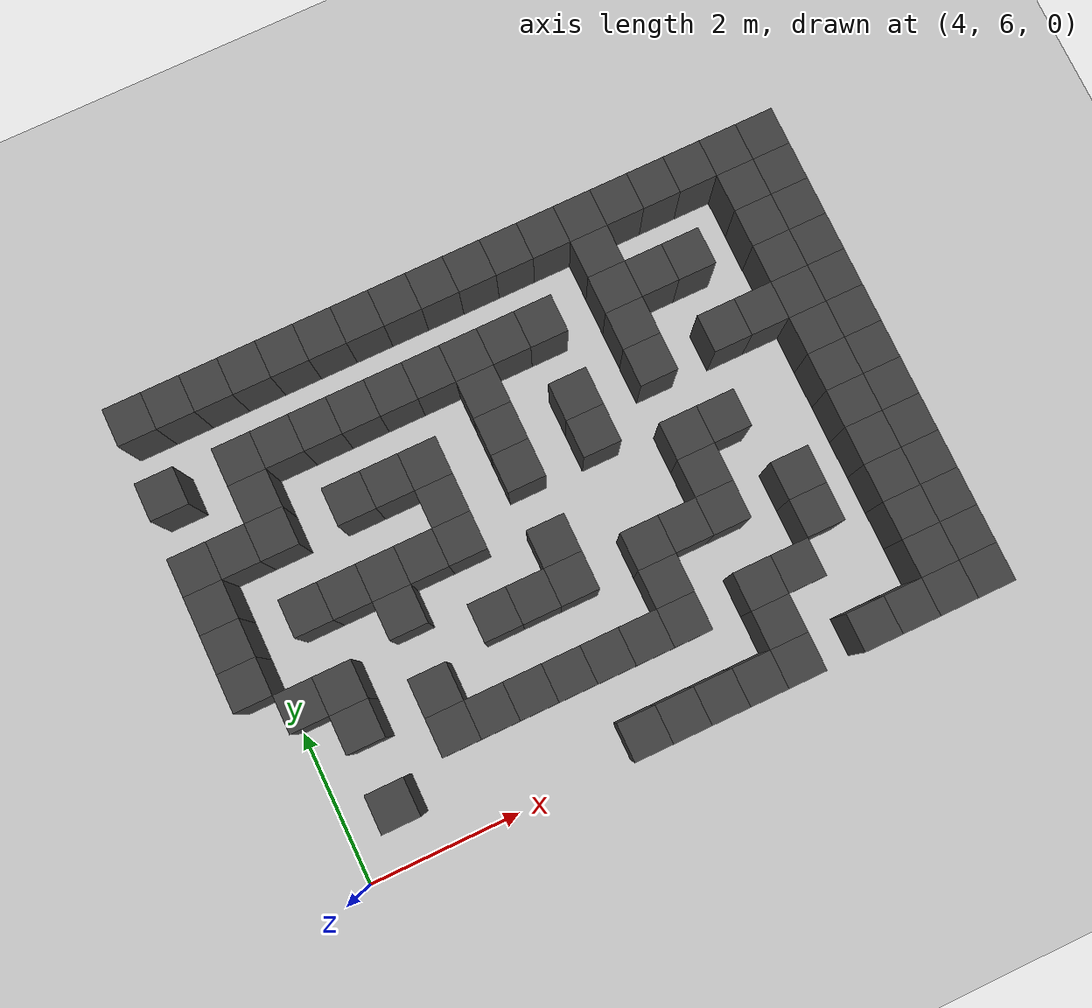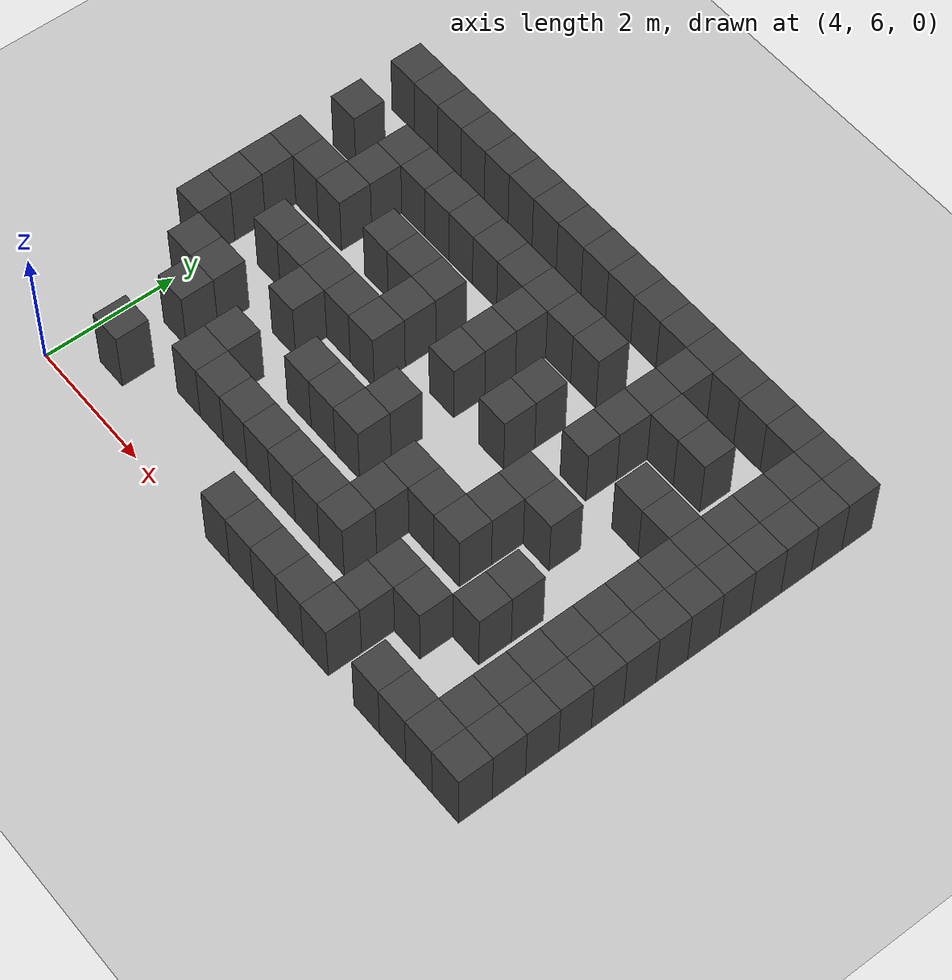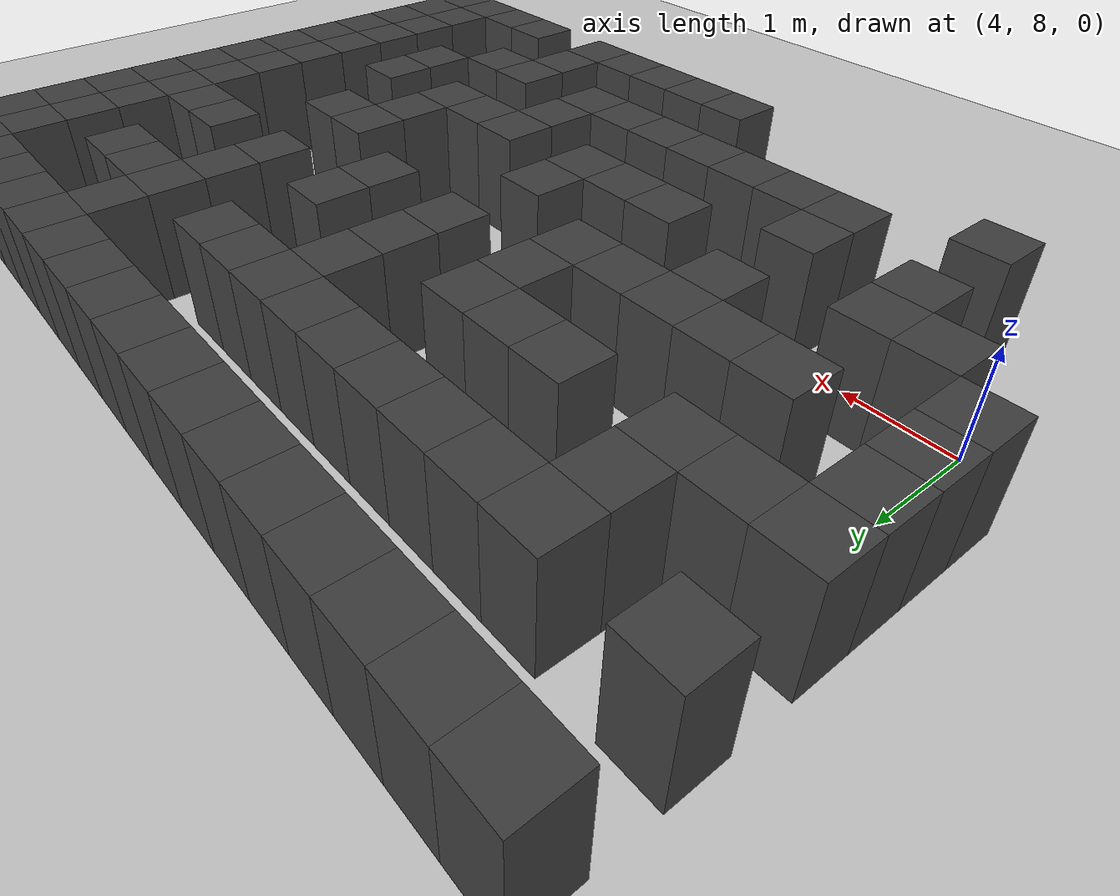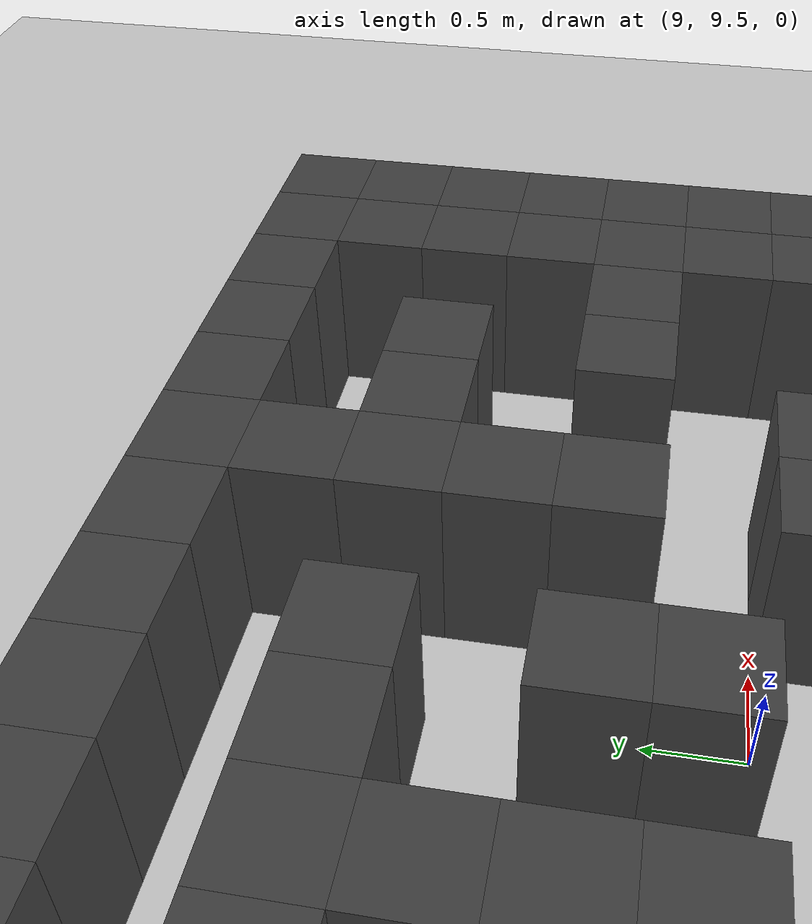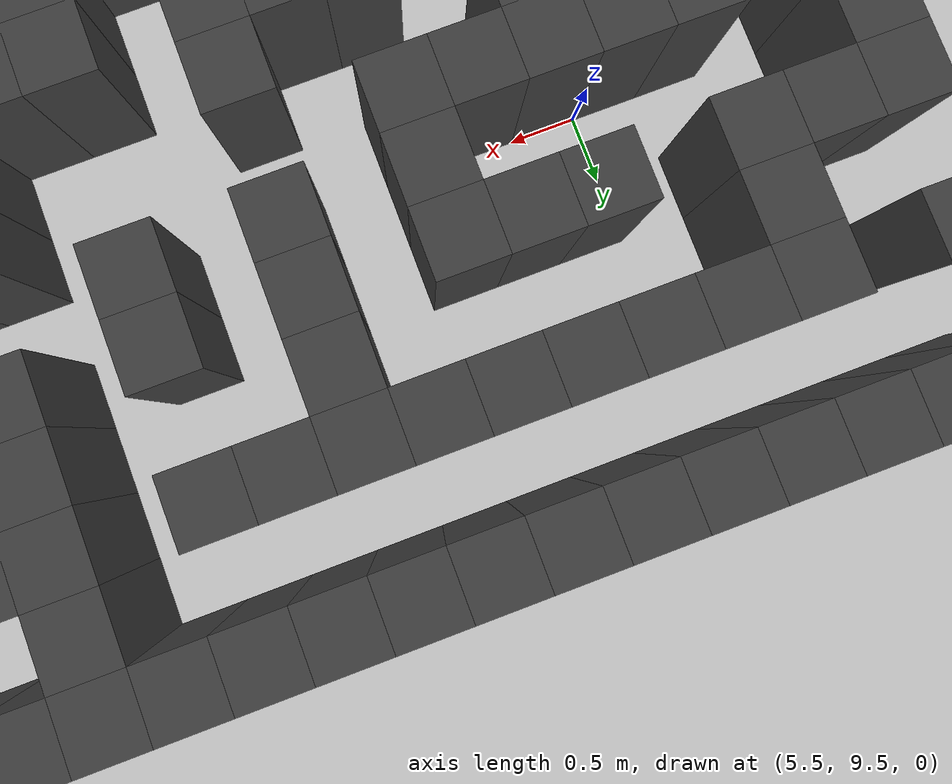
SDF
<sdf version="1.7">
 <world name="map_18228">
  <model name="ground_plane">
   <static>true</static>
   <link name="link">
    <collision name="collision">
     <geometry><plane><normal>0 0 1</normal><size>200 200</size></plane></geometry>
    </collision>
    <visual name="visual">
     <geometry><plane><normal>0 0 1</normal><size>200 200</size></plane></geometry>
     <material><ambient>0.8 0.8 0.8 1</ambient><diffuse>0.8 0.8 0.8 1</diffuse></material>
    </visual>
   </link>
  </model>
  <model name="maze_environment">
   <static>true</static>
   <link name="wall_32">
    <pose>3.750 12.250 0.500 0 0 0</pose>
    <collision name="col"><geometry><box><size>0.5 0.5 1.0</size></box></geometry></collision>
    <visual name="vis">
     <geometry><box><size>0.5 0.5 1.0</size></box></geometry>
     <material><ambient>0.15 0.15 0.15 1</ambient><diffuse>0.25 0.25 0.25 1</diffuse></material>
    </visual>
   </link>
   <link name="wall_33">
    <pose>4.250 12.250 0.500 0 0 0</pose>
    <collision name="col"><geometry><box><size>0.5 0.5 1.0</size></box></geometry></collision>
    <visual name="vis">
     <geometry><box><size>0.5 0.5 1.0</size></box></geometry>
     <material><ambient>0.15 0.15 0.15 1</ambient><diffuse>0.25 0.25 0.25 1</diffuse></material>
    </visual>
   </link>
   <link name="wall_34">
    <pose>4.750 12.250 0.500 0 0 0</pose>
    <collision name="col"><geometry><box><size>0.5 0.5 1.0</size></box></geometry></collision>
    <visual name="vis">
     <geometry><box><size>0.5 0.5 1.0</size></box></geometry>
     <material><ambient>0.15 0.15 0.15 1</ambient><diffuse>0.25 0.25 0.25 1</diffuse></material>
    </visual>
   </link>
   <link name="wall_35">
    <pose>5.250 12.250 0.500 0 0 0</pose>
    <collision name="col"><geometry><box><size>0.5 0.5 1.0</size></box></geometry></collision>
    <visual name="vis">
     <geometry><box><size>0.5 0.5 1.0</size></box></geometry>
     <material><ambient>0.15 0.15 0.15 1</ambient><diffuse>0.25 0.25 0.25 1</diffuse></material>
    </visual>
   </link>
   <link name="wall_36">
    <pose>5.750 12.250 0.500 0 0 0</pose>
    <collision name="col"><geometry><box><size>0.5 0.5 1.0</size></box></geometry></collision>
    <visual name="vis">
     <geometry><box><size>0.5 0.5 1.0</size></box></geometry>
     <material><ambient>0.15 0.15 0.15 1</ambient><diffuse>0.25 0.25 0.25 1</diffuse></material>
    </visual>
   </link>
   <link name="wall_37">
    <pose>6.250 12.250 0.500 0 0 0</pose>
    <collision name="col"><geometry><box><size>0.5 0.5 1.0</size></box></geometry></collision>
    <visual name="vis">
     <geometry><box><size>0.5 0.5 1.0</size></box></geometry>
     <material><ambient>0.15 0.15 0.15 1</ambient><diffuse>0.25 0.25 0.25 1</diffuse></material>
    </visual>
   </link>
   <link name="wall_38">
    <pose>6.750 12.250 0.500 0 0 0</pose>
    <collision name="col"><geometry><box><size>0.5 0.5 1.0</size></box></geometry></collision>
    <visual name="vis">
     <geometry><box><size>0.5 0.5 1.0</size></box></geometry>
     <material><ambient>0.15 0.15 0.15 1</ambient><diffuse>0.25 0.25 0.25 1</diffuse></material>
    </visual>
   </link>
   <link name="wall_39">
    <pose>7.250 12.250 0.500 0 0 0</pose>
    <collision name="col"><geometry><box><size>0.5 0.5 1.0</size></box></geometry></collision>
    <visual name="vis">
     <geometry><box><size>0.5 0.5 1.0</size></box></geometry>
     <material><ambient>0.15 0.15 0.15 1</ambient><diffuse>0.25 0.25 0.25 1</diffuse></material>
    </visual>
   </link>
   <link name="wall_40">
    <pose>7.750 12.250 0.500 0 0 0</pose>
    <collision name="col"><geometry><box><size>0.5 0.5 1.0</size></box></geometry></collision>
    <visual name="vis">
     <geometry><box><size>0.5 0.5 1.0</size></box></geometry>
     <material><ambient>0.15 0.15 0.15 1</ambient><diffuse>0.25 0.25 0.25 1</diffuse></material>
    </visual>
   </link>
   <link name="wall_41">
    <pose>8.250 12.250 0.500 0 0 0</pose>
    <collision name="col"><geometry><box><size>0.5 0.5 1.0</size></box></geometry></collision>
    <visual name="vis">
     <geometry><box><size>0.5 0.5 1.0</size></box></geometry>
     <material><ambient>0.15 0.15 0.15 1</ambient><diffuse>0.25 0.25 0.25 1</diffuse></material>
    </visual>
   </link>
   <link name="wall_42">
    <pose>8.750 12.250 0.500 0 0 0</pose>
    <collision name="col"><geometry><box><size>0.5 0.5 1.0</size></box></geometry></collision>
    <visual name="vis">
     <geometry><box><size>0.5 0.5 1.0</size></box></geometry>
     <material><ambient>0.15 0.15 0.15 1</ambient><diffuse>0.25 0.25 0.25 1</diffuse></material>
    </visual>
   </link>
   <link name="wall_43">
    <pose>9.250 12.250 0.500 0 0 0</pose>
    <collision name="col"><geometry><box><size>0.5 0.5 1.0</size></box></geometry></collision>
    <visual name="vis">
     <geometry><box><size>0.5 0.5 1.0</size></box></geometry>
     <material><ambient>0.15 0.15 0.15 1</ambient><diffuse>0.25 0.25 0.25 1</diffuse></material>
    </visual>
   </link>
   <link name="wall_44">
    <pose>9.750 12.250 0.500 0 0 0</pose>
    <collision name="col"><geometry><box><size>0.5 0.5 1.0</size></box></geometry></collision>
    <visual name="vis">
     <geometry><box><size>0.5 0.5 1.0</size></box></geometry>
     <material><ambient>0.15 0.15 0.15 1</ambient><diffuse>0.25 0.25 0.25 1</diffuse></material>
    </visual>
   </link>
   <link name="wall_45">
    <pose>10.250 12.250 0.500 0 0 0</pose>
    <collision name="col"><geometry><box><size>0.5 0.5 1.0</size></box></geometry></collision>
    <visual name="vis">
     <geometry><box><size>0.5 0.5 1.0</size></box></geometry>
     <material><ambient>0.15 0.15 0.15 1</ambient><diffuse>0.25 0.25 0.25 1</diffuse></material>
    </visual>
   </link>
   <link name="wall_46">
    <pose>10.750 12.250 0.500 0 0 0</pose>
    <collision name="col"><geometry><box><size>0.5 0.5 1.0</size></box></geometry></collision>
    <visual name="vis">
     <geometry><box><size>0.5 0.5 1.0</size></box></geometry>
     <material><ambient>0.15 0.15 0.15 1</ambient><diffuse>0.25 0.25 0.25 1</diffuse></material>
    </visual>
   </link>
   <link name="wall_47">
    <pose>11.250 12.250 0.500 0 0 0</pose>
    <collision name="col"><geometry><box><size>0.5 0.5 1.0</size></box></geometry></collision>
    <visual name="vis">
     <geometry><box><size>0.5 0.5 1.0</size></box></geometry>
     <material><ambient>0.15 0.15 0.15 1</ambient><diffuse>0.25 0.25 0.25 1</diffuse></material>
    </visual>
   </link>
   <link name="wall_48">
    <pose>11.750 12.250 0.500 0 0 0</pose>
    <collision name="col"><geometry><box><size>0.5 0.5 1.0</size></box></geometry></collision>
    <visual name="vis">
     <geometry><box><size>0.5 0.5 1.0</size></box></geometry>
     <material><ambient>0.15 0.15 0.15 1</ambient><diffuse>0.25 0.25 0.25 1</diffuse></material>
    </visual>
   </link>
   <link name="wall_49">
    <pose>12.250 12.250 0.500 0 0 0</pose>
    <collision name="col"><geometry><box><size>0.5 0.5 1.0</size></box></geometry></collision>
    <visual name="vis">
     <geometry><box><size>0.5 0.5 1.0</size></box></geometry>
     <material><ambient>0.15 0.15 0.15 1</ambient><diffuse>0.25 0.25 0.25 1</diffuse></material>
    </visual>
   </link>
   <link name="wall_54">
    <pose>9.750 11.750 0.500 0 0 0</pose>
    <collision name="col"><geometry><box><size>0.5 0.5 1.0</size></box></geometry></collision>
    <visual name="vis">
     <geometry><box><size>0.5 0.5 1.0</size></box></geometry>
     <material><ambient>0.15 0.15 0.15 1</ambient><diffuse>0.25 0.25 0.25 1</diffuse></material>
    </visual>
   </link>
   <link name="wall_55">
    <pose>11.750 11.750 0.500 0 0 0</pose>
    <collision name="col"><geometry><box><size>0.5 0.5 1.0</size></box></geometry></collision>
    <visual name="vis">
     <geometry><box><size>0.5 0.5 1.0</size></box></geometry>
     <material><ambient>0.15 0.15 0.15 1</ambient><diffuse>0.25 0.25 0.25 1</diffuse></material>
    </visual>
   </link>
   <link name="wall_56">
    <pose>12.250 11.750 0.500 0 0 0</pose>
    <collision name="col"><geometry><box><size>0.5 0.5 1.0</size></box></geometry></collision>
    <visual name="vis">
     <geometry><box><size>0.5 0.5 1.0</size></box></geometry>
     <material><ambient>0.15 0.15 0.15 1</ambient><diffuse>0.25 0.25 0.25 1</diffuse></material>
    </visual>
   </link>
   <link name="wall_80">
    <pose>3.750 11.250 0.500 0 0 0</pose>
    <collision name="col"><geometry><box><size>0.5 0.5 1.0</size></box></geometry></collision>
    <visual name="vis">
     <geometry><box><size>0.5 0.5 1.0</size></box></geometry>
     <material><ambient>0.15 0.15 0.15 1</ambient><diffuse>0.25 0.25 0.25 1</diffuse></material>
    </visual>
   </link>
   <link name="wall_81">
    <pose>4.750 11.250 0.500 0 0 0</pose>
    <collision name="col"><geometry><box><size>0.5 0.5 1.0</size></box></geometry></collision>
    <visual name="vis">
     <geometry><box><size>0.5 0.5 1.0</size></box></geometry>
     <material><ambient>0.15 0.15 0.15 1</ambient><diffuse>0.25 0.25 0.25 1</diffuse></material>
    </visual>
   </link>
   <link name="wall_82">
    <pose>5.250 11.250 0.500 0 0 0</pose>
    <collision name="col"><geometry><box><size>0.5 0.5 1.0</size></box></geometry></collision>
    <visual name="vis">
     <geometry><box><size>0.5 0.5 1.0</size></box></geometry>
     <material><ambient>0.15 0.15 0.15 1</ambient><diffuse>0.25 0.25 0.25 1</diffuse></material>
    </visual>
   </link>
   <link name="wall_83">
    <pose>5.750 11.250 0.500 0 0 0</pose>
    <collision name="col"><geometry><box><size>0.5 0.5 1.0</size></box></geometry></collision>
    <visual name="vis">
     <geometry><box><size>0.5 0.5 1.0</size></box></geometry>
     <material><ambient>0.15 0.15 0.15 1</ambient><diffuse>0.25 0.25 0.25 1</diffuse></material>
    </visual>
   </link>
   <link name="wall_84">
    <pose>6.250 11.250 0.500 0 0 0</pose>
    <collision name="col"><geometry><box><size>0.5 0.5 1.0</size></box></geometry></collision>
    <visual name="vis">
     <geometry><box><size>0.5 0.5 1.0</size></box></geometry>
     <material><ambient>0.15 0.15 0.15 1</ambient><diffuse>0.25 0.25 0.25 1</diffuse></material>
    </visual>
   </link>
   <link name="wall_85">
    <pose>6.750 11.250 0.500 0 0 0</pose>
    <collision name="col"><geometry><box><size>0.5 0.5 1.0</size></box></geometry></collision>
    <visual name="vis">
     <geometry><box><size>0.5 0.5 1.0</size></box></geometry>
     <material><ambient>0.15 0.15 0.15 1</ambient><diffuse>0.25 0.25 0.25 1</diffuse></material>
    </visual>
   </link>
   <link name="wall_86">
    <pose>7.250 11.250 0.500 0 0 0</pose>
    <collision name="col"><geometry><box><size>0.5 0.5 1.0</size></box></geometry></collision>
    <visual name="vis">
     <geometry><box><size>0.5 0.5 1.0</size></box></geometry>
     <material><ambient>0.15 0.15 0.15 1</ambient><diffuse>0.25 0.25 0.25 1</diffuse></material>
    </visual>
   </link>
   <link name="wall_87">
    <pose>7.750 11.250 0.500 0 0 0</pose>
    <collision name="col"><geometry><box><size>0.5 0.5 1.0</size></box></geometry></collision>
    <visual name="vis">
     <geometry><box><size>0.5 0.5 1.0</size></box></geometry>
     <material><ambient>0.15 0.15 0.15 1</ambient><diffuse>0.25 0.25 0.25 1</diffuse></material>
    </visual>
   </link>
   <link name="wall_88">
    <pose>8.250 11.250 0.500 0 0 0</pose>
    <collision name="col"><geometry><box><size>0.5 0.5 1.0</size></box></geometry></collision>
    <visual name="vis">
     <geometry><box><size>0.5 0.5 1.0</size></box></geometry>
     <material><ambient>0.15 0.15 0.15 1</ambient><diffuse>0.25 0.25 0.25 1</diffuse></material>
    </visual>
   </link>
   <link name="wall_89">
    <pose>8.750 11.250 0.500 0 0 0</pose>
    <collision name="col"><geometry><box><size>0.5 0.5 1.0</size></box></geometry></collision>
    <visual name="vis">
     <geometry><box><size>0.5 0.5 1.0</size></box></geometry>
     <material><ambient>0.15 0.15 0.15 1</ambient><diffuse>0.25 0.25 0.25 1</diffuse></material>
    </visual>
   </link>
   <link name="wall_90">
    <pose>9.750 11.250 0.500 0 0 0</pose>
    <collision name="col"><geometry><box><size>0.5 0.5 1.0</size></box></geometry></collision>
    <visual name="vis">
     <geometry><box><size>0.5 0.5 1.0</size></box></geometry>
     <material><ambient>0.15 0.15 0.15 1</ambient><diffuse>0.25 0.25 0.25 1</diffuse></material>
    </visual>
   </link>
   <link name="wall_91">
    <pose>10.250 11.250 0.500 0 0 0</pose>
    <collision name="col"><geometry><box><size>0.5 0.5 1.0</size></box></geometry></collision>
    <visual name="vis">
     <geometry><box><size>0.5 0.5 1.0</size></box></geometry>
     <material><ambient>0.15 0.15 0.15 1</ambient><diffuse>0.25 0.25 0.25 1</diffuse></material>
    </visual>
   </link>
   <link name="wall_92">
    <pose>10.750 11.250 0.500 0 0 0</pose>
    <collision name="col"><geometry><box><size>0.5 0.5 1.0</size></box></geometry></collision>
    <visual name="vis">
     <geometry><box><size>0.5 0.5 1.0</size></box></geometry>
     <material><ambient>0.15 0.15 0.15 1</ambient><diffuse>0.25 0.25 0.25 1</diffuse></material>
    </visual>
   </link>
   <link name="wall_93">
    <pose>11.750 11.250 0.500 0 0 0</pose>
    <collision name="col"><geometry><box><size>0.5 0.5 1.0</size></box></geometry></collision>
    <visual name="vis">
     <geometry><box><size>0.5 0.5 1.0</size></box></geometry>
     <material><ambient>0.15 0.15 0.15 1</ambient><diffuse>0.25 0.25 0.25 1</diffuse></material>
    </visual>
   </link>
   <link name="wall_94">
    <pose>12.250 11.250 0.500 0 0 0</pose>
    <collision name="col"><geometry><box><size>0.5 0.5 1.0</size></box></geometry></collision>
    <visual name="vis">
     <geometry><box><size>0.5 0.5 1.0</size></box></geometry>
     <material><ambient>0.15 0.15 0.15 1</ambient><diffuse>0.25 0.25 0.25 1</diffuse></material>
    </visual>
   </link>
   <link name="wall_103">
    <pose>4.750 10.750 0.500 0 0 0</pose>
    <collision name="col"><geometry><box><size>0.5 0.5 1.0</size></box></geometry></collision>
    <visual name="vis">
     <geometry><box><size>0.5 0.5 1.0</size></box></geometry>
     <material><ambient>0.15 0.15 0.15 1</ambient><diffuse>0.25 0.25 0.25 1</diffuse></material>
    </visual>
   </link>
   <link name="wall_104">
    <pose>7.750 10.750 0.500 0 0 0</pose>
    <collision name="col"><geometry><box><size>0.5 0.5 1.0</size></box></geometry></collision>
    <visual name="vis">
     <geometry><box><size>0.5 0.5 1.0</size></box></geometry>
     <material><ambient>0.15 0.15 0.15 1</ambient><diffuse>0.25 0.25 0.25 1</diffuse></material>
    </visual>
   </link>
   <link name="wall_105">
    <pose>9.750 10.750 0.500 0 0 0</pose>
    <collision name="col"><geometry><box><size>0.5 0.5 1.0</size></box></geometry></collision>
    <visual name="vis">
     <geometry><box><size>0.5 0.5 1.0</size></box></geometry>
     <material><ambient>0.15 0.15 0.15 1</ambient><diffuse>0.25 0.25 0.25 1</diffuse></material>
    </visual>
   </link>
   <link name="wall_106">
    <pose>11.750 10.750 0.500 0 0 0</pose>
    <collision name="col"><geometry><box><size>0.5 0.5 1.0</size></box></geometry></collision>
    <visual name="vis">
     <geometry><box><size>0.5 0.5 1.0</size></box></geometry>
     <material><ambient>0.15 0.15 0.15 1</ambient><diffuse>0.25 0.25 0.25 1</diffuse></material>
    </visual>
   </link>
   <link name="wall_107">
    <pose>12.250 10.750 0.500 0 0 0</pose>
    <collision name="col"><geometry><box><size>0.5 0.5 1.0</size></box></geometry></collision>
    <visual name="vis">
     <geometry><box><size>0.5 0.5 1.0</size></box></geometry>
     <material><ambient>0.15 0.15 0.15 1</ambient><diffuse>0.25 0.25 0.25 1</diffuse></material>
    </visual>
   </link>
   <link name="wall_132">
    <pose>3.750 10.250 0.500 0 0 0</pose>
    <collision name="col"><geometry><box><size>0.5 0.5 1.0</size></box></geometry></collision>
    <visual name="vis">
     <geometry><box><size>0.5 0.5 1.0</size></box></geometry>
     <material><ambient>0.15 0.15 0.15 1</ambient><diffuse>0.25 0.25 0.25 1</diffuse></material>
    </visual>
   </link>
   <link name="wall_133">
    <pose>4.250 10.250 0.500 0 0 0</pose>
    <collision name="col"><geometry><box><size>0.5 0.5 1.0</size></box></geometry></collision>
    <visual name="vis">
     <geometry><box><size>0.5 0.5 1.0</size></box></geometry>
     <material><ambient>0.15 0.15 0.15 1</ambient><diffuse>0.25 0.25 0.25 1</diffuse></material>
    </visual>
   </link>
   <link name="wall_134">
    <pose>4.750 10.250 0.500 0 0 0</pose>
    <collision name="col"><geometry><box><size>0.5 0.5 1.0</size></box></geometry></collision>
    <visual name="vis">
     <geometry><box><size>0.5 0.5 1.0</size></box></geometry>
     <material><ambient>0.15 0.15 0.15 1</ambient><diffuse>0.25 0.25 0.25 1</diffuse></material>
    </visual>
   </link>
   <link name="wall_135">
    <pose>5.750 10.250 0.500 0 0 0</pose>
    <collision name="col"><geometry><box><size>0.5 0.5 1.0</size></box></geometry></collision>
    <visual name="vis">
     <geometry><box><size>0.5 0.5 1.0</size></box></geometry>
     <material><ambient>0.15 0.15 0.15 1</ambient><diffuse>0.25 0.25 0.25 1</diffuse></material>
    </visual>
   </link>
   <link name="wall_136">
    <pose>6.250 10.250 0.500 0 0 0</pose>
    <collision name="col"><geometry><box><size>0.5 0.5 1.0</size></box></geometry></collision>
    <visual name="vis">
     <geometry><box><size>0.5 0.5 1.0</size></box></geometry>
     <material><ambient>0.15 0.15 0.15 1</ambient><diffuse>0.25 0.25 0.25 1</diffuse></material>
    </visual>
   </link>
   <link name="wall_137">
    <pose>6.750 10.250 0.500 0 0 0</pose>
    <collision name="col"><geometry><box><size>0.5 0.5 1.0</size></box></geometry></collision>
    <visual name="vis">
     <geometry><box><size>0.5 0.5 1.0</size></box></geometry>
     <material><ambient>0.15 0.15 0.15 1</ambient><diffuse>0.25 0.25 0.25 1</diffuse></material>
    </visual>
   </link>
   <link name="wall_138">
    <pose>7.750 10.250 0.500 0 0 0</pose>
    <collision name="col"><geometry><box><size>0.5 0.5 1.0</size></box></geometry></collision>
    <visual name="vis">
     <geometry><box><size>0.5 0.5 1.0</size></box></geometry>
     <material><ambient>0.15 0.15 0.15 1</ambient><diffuse>0.25 0.25 0.25 1</diffuse></material>
    </visual>
   </link>
   <link name="wall_139">
    <pose>8.750 10.250 0.500 0 0 0</pose>
    <collision name="col"><geometry><box><size>0.5 0.5 1.0</size></box></geometry></collision>
    <visual name="vis">
     <geometry><box><size>0.5 0.5 1.0</size></box></geometry>
     <material><ambient>0.15 0.15 0.15 1</ambient><diffuse>0.25 0.25 0.25 1</diffuse></material>
    </visual>
   </link>
   <link name="wall_140">
    <pose>9.750 10.250 0.500 0 0 0</pose>
    <collision name="col"><geometry><box><size>0.5 0.5 1.0</size></box></geometry></collision>
    <visual name="vis">
     <geometry><box><size>0.5 0.5 1.0</size></box></geometry>
     <material><ambient>0.15 0.15 0.15 1</ambient><diffuse>0.25 0.25 0.25 1</diffuse></material>
    </visual>
   </link>
   <link name="wall_141">
    <pose>10.750 10.250 0.500 0 0 0</pose>
    <collision name="col"><geometry><box><size>0.5 0.5 1.0</size></box></geometry></collision>
    <visual name="vis">
     <geometry><box><size>0.5 0.5 1.0</size></box></geometry>
     <material><ambient>0.15 0.15 0.15 1</ambient><diffuse>0.25 0.25 0.25 1</diffuse></material>
    </visual>
   </link>
   <link name="wall_142">
    <pose>11.250 10.250 0.500 0 0 0</pose>
    <collision name="col"><geometry><box><size>0.5 0.5 1.0</size></box></geometry></collision>
    <visual name="vis">
     <geometry><box><size>0.5 0.5 1.0</size></box></geometry>
     <material><ambient>0.15 0.15 0.15 1</ambient><diffuse>0.25 0.25 0.25 1</diffuse></material>
    </visual>
   </link>
   <link name="wall_143">
    <pose>11.750 10.250 0.500 0 0 0</pose>
    <collision name="col"><geometry><box><size>0.5 0.5 1.0</size></box></geometry></collision>
    <visual name="vis">
     <geometry><box><size>0.5 0.5 1.0</size></box></geometry>
     <material><ambient>0.15 0.15 0.15 1</ambient><diffuse>0.25 0.25 0.25 1</diffuse></material>
    </visual>
   </link>
   <link name="wall_144">
    <pose>12.250 10.250 0.500 0 0 0</pose>
    <collision name="col"><geometry><box><size>0.5 0.5 1.0</size></box></geometry></collision>
    <visual name="vis">
     <geometry><box><size>0.5 0.5 1.0</size></box></geometry>
     <material><ambient>0.15 0.15 0.15 1</ambient><diffuse>0.25 0.25 0.25 1</diffuse></material>
    </visual>
   </link>
   <link name="wall_154">
    <pose>3.750 9.750 0.500 0 0 0</pose>
    <collision name="col"><geometry><box><size>0.5 0.5 1.0</size></box></geometry></collision>
    <visual name="vis">
     <geometry><box><size>0.5 0.5 1.0</size></box></geometry>
     <material><ambient>0.15 0.15 0.15 1</ambient><diffuse>0.25 0.25 0.25 1</diffuse></material>
    </visual>
   </link>
   <link name="wall_155">
    <pose>6.750 9.750 0.500 0 0 0</pose>
    <collision name="col"><geometry><box><size>0.5 0.5 1.0</size></box></geometry></collision>
    <visual name="vis">
     <geometry><box><size>0.5 0.5 1.0</size></box></geometry>
     <material><ambient>0.15 0.15 0.15 1</ambient><diffuse>0.25 0.25 0.25 1</diffuse></material>
    </visual>
   </link>
   <link name="wall_156">
    <pose>7.750 9.750 0.500 0 0 0</pose>
    <collision name="col"><geometry><box><size>0.5 0.5 1.0</size></box></geometry></collision>
    <visual name="vis">
     <geometry><box><size>0.5 0.5 1.0</size></box></geometry>
     <material><ambient>0.15 0.15 0.15 1</ambient><diffuse>0.25 0.25 0.25 1</diffuse></material>
    </visual>
   </link>
   <link name="wall_157">
    <pose>8.750 9.750 0.500 0 0 0</pose>
    <collision name="col"><geometry><box><size>0.5 0.5 1.0</size></box></geometry></collision>
    <visual name="vis">
     <geometry><box><size>0.5 0.5 1.0</size></box></geometry>
     <material><ambient>0.15 0.15 0.15 1</ambient><diffuse>0.25 0.25 0.25 1</diffuse></material>
    </visual>
   </link>
   <link name="wall_158">
    <pose>11.750 9.750 0.500 0 0 0</pose>
    <collision name="col"><geometry><box><size>0.5 0.5 1.0</size></box></geometry></collision>
    <visual name="vis">
     <geometry><box><size>0.5 0.5 1.0</size></box></geometry>
     <material><ambient>0.15 0.15 0.15 1</ambient><diffuse>0.25 0.25 0.25 1</diffuse></material>
    </visual>
   </link>
   <link name="wall_159">
    <pose>12.250 9.750 0.500 0 0 0</pose>
    <collision name="col"><geometry><box><size>0.5 0.5 1.0</size></box></geometry></collision>
    <visual name="vis">
     <geometry><box><size>0.5 0.5 1.0</size></box></geometry>
     <material><ambient>0.15 0.15 0.15 1</ambient><diffuse>0.25 0.25 0.25 1</diffuse></material>
    </visual>
   </link>
   <link name="wall_182">
    <pose>3.750 9.250 0.500 0 0 0</pose>
    <collision name="col"><geometry><box><size>0.5 0.5 1.0</size></box></geometry></collision>
    <visual name="vis">
     <geometry><box><size>0.5 0.5 1.0</size></box></geometry>
     <material><ambient>0.15 0.15 0.15 1</ambient><diffuse>0.25 0.25 0.25 1</diffuse></material>
    </visual>
   </link>
   <link name="wall_183">
    <pose>4.750 9.250 0.500 0 0 0</pose>
    <collision name="col"><geometry><box><size>0.5 0.5 1.0</size></box></geometry></collision>
    <visual name="vis">
     <geometry><box><size>0.5 0.5 1.0</size></box></geometry>
     <material><ambient>0.15 0.15 0.15 1</ambient><diffuse>0.25 0.25 0.25 1</diffuse></material>
    </visual>
   </link>
   <link name="wall_184">
    <pose>5.250 9.250 0.500 0 0 0</pose>
    <collision name="col"><geometry><box><size>0.5 0.5 1.0</size></box></geometry></collision>
    <visual name="vis">
     <geometry><box><size>0.5 0.5 1.0</size></box></geometry>
     <material><ambient>0.15 0.15 0.15 1</ambient><diffuse>0.25 0.25 0.25 1</diffuse></material>
    </visual>
   </link>
   <link name="wall_185">
    <pose>5.750 9.250 0.500 0 0 0</pose>
    <collision name="col"><geometry><box><size>0.5 0.5 1.0</size></box></geometry></collision>
    <visual name="vis">
     <geometry><box><size>0.5 0.5 1.0</size></box></geometry>
     <material><ambient>0.15 0.15 0.15 1</ambient><diffuse>0.25 0.25 0.25 1</diffuse></material>
    </visual>
   </link>
   <link name="wall_186">
    <pose>6.250 9.250 0.500 0 0 0</pose>
    <collision name="col"><geometry><box><size>0.5 0.5 1.0</size></box></geometry></collision>
    <visual name="vis">
     <geometry><box><size>0.5 0.5 1.0</size></box></geometry>
     <material><ambient>0.15 0.15 0.15 1</ambient><diffuse>0.25 0.25 0.25 1</diffuse></material>
    </visual>
   </link>
   <link name="wall_187">
    <pose>6.750 9.250 0.500 0 0 0</pose>
    <collision name="col"><geometry><box><size>0.5 0.5 1.0</size></box></geometry></collision>
    <visual name="vis">
     <geometry><box><size>0.5 0.5 1.0</size></box></geometry>
     <material><ambient>0.15 0.15 0.15 1</ambient><diffuse>0.25 0.25 0.25 1</diffuse></material>
    </visual>
   </link>
   <link name="wall_188">
    <pose>9.750 9.250 0.500 0 0 0</pose>
    <collision name="col"><geometry><box><size>0.5 0.5 1.0</size></box></geometry></collision>
    <visual name="vis">
     <geometry><box><size>0.5 0.5 1.0</size></box></geometry>
     <material><ambient>0.15 0.15 0.15 1</ambient><diffuse>0.25 0.25 0.25 1</diffuse></material>
    </visual>
   </link>
   <link name="wall_189">
    <pose>10.250 9.250 0.500 0 0 0</pose>
    <collision name="col"><geometry><box><size>0.5 0.5 1.0</size></box></geometry></collision>
    <visual name="vis">
     <geometry><box><size>0.5 0.5 1.0</size></box></geometry>
     <material><ambient>0.15 0.15 0.15 1</ambient><diffuse>0.25 0.25 0.25 1</diffuse></material>
    </visual>
   </link>
   <link name="wall_190">
    <pose>11.750 9.250 0.500 0 0 0</pose>
    <collision name="col"><geometry><box><size>0.5 0.5 1.0</size></box></geometry></collision>
    <visual name="vis">
     <geometry><box><size>0.5 0.5 1.0</size></box></geometry>
     <material><ambient>0.15 0.15 0.15 1</ambient><diffuse>0.25 0.25 0.25 1</diffuse></material>
    </visual>
   </link>
   <link name="wall_191">
    <pose>12.250 9.250 0.500 0 0 0</pose>
    <collision name="col"><geometry><box><size>0.5 0.5 1.0</size></box></geometry></collision>
    <visual name="vis">
     <geometry><box><size>0.5 0.5 1.0</size></box></geometry>
     <material><ambient>0.15 0.15 0.15 1</ambient><diffuse>0.25 0.25 0.25 1</diffuse></material>
    </visual>
   </link>
   <link name="wall_201">
    <pose>3.750 8.750 0.500 0 0 0</pose>
    <collision name="col"><geometry><box><size>0.5 0.5 1.0</size></box></geometry></collision>
    <visual name="vis">
     <geometry><box><size>0.5 0.5 1.0</size></box></geometry>
     <material><ambient>0.15 0.15 0.15 1</ambient><diffuse>0.25 0.25 0.25 1</diffuse></material>
    </visual>
   </link>
   <link name="wall_202">
    <pose>5.750 8.750 0.500 0 0 0</pose>
    <collision name="col"><geometry><box><size>0.5 0.5 1.0</size></box></geometry></collision>
    <visual name="vis">
     <geometry><box><size>0.5 0.5 1.0</size></box></geometry>
     <material><ambient>0.15 0.15 0.15 1</ambient><diffuse>0.25 0.25 0.25 1</diffuse></material>
    </visual>
   </link>
   <link name="wall_203">
    <pose>7.750 8.750 0.500 0 0 0</pose>
    <collision name="col"><geometry><box><size>0.5 0.5 1.0</size></box></geometry></collision>
    <visual name="vis">
     <geometry><box><size>0.5 0.5 1.0</size></box></geometry>
     <material><ambient>0.15 0.15 0.15 1</ambient><diffuse>0.25 0.25 0.25 1</diffuse></material>
    </visual>
   </link>
   <link name="wall_204">
    <pose>9.750 8.750 0.500 0 0 0</pose>
    <collision name="col"><geometry><box><size>0.5 0.5 1.0</size></box></geometry></collision>
    <visual name="vis">
     <geometry><box><size>0.5 0.5 1.0</size></box></geometry>
     <material><ambient>0.15 0.15 0.15 1</ambient><diffuse>0.25 0.25 0.25 1</diffuse></material>
    </visual>
   </link>
   <link name="wall_205">
    <pose>11.750 8.750 0.500 0 0 0</pose>
    <collision name="col"><geometry><box><size>0.5 0.5 1.0</size></box></geometry></collision>
    <visual name="vis">
     <geometry><box><size>0.5 0.5 1.0</size></box></geometry>
     <material><ambient>0.15 0.15 0.15 1</ambient><diffuse>0.25 0.25 0.25 1</diffuse></material>
    </visual>
   </link>
   <link name="wall_206">
    <pose>12.250 8.750 0.500 0 0 0</pose>
    <collision name="col"><geometry><box><size>0.5 0.5 1.0</size></box></geometry></collision>
    <visual name="vis">
     <geometry><box><size>0.5 0.5 1.0</size></box></geometry>
     <material><ambient>0.15 0.15 0.15 1</ambient><diffuse>0.25 0.25 0.25 1</diffuse></material>
    </visual>
   </link>
   <link name="wall_232">
    <pose>4.250 8.250 0.500 0 0 0</pose>
    <collision name="col"><geometry><box><size>0.5 0.5 1.0</size></box></geometry></collision>
    <visual name="vis">
     <geometry><box><size>0.5 0.5 1.0</size></box></geometry>
     <material><ambient>0.15 0.15 0.15 1</ambient><diffuse>0.25 0.25 0.25 1</diffuse></material>
    </visual>
   </link>
   <link name="wall_233">
    <pose>4.750 8.250 0.500 0 0 0</pose>
    <collision name="col"><geometry><box><size>0.5 0.5 1.0</size></box></geometry></collision>
    <visual name="vis">
     <geometry><box><size>0.5 0.5 1.0</size></box></geometry>
     <material><ambient>0.15 0.15 0.15 1</ambient><diffuse>0.25 0.25 0.25 1</diffuse></material>
    </visual>
   </link>
   <link name="wall_234">
    <pose>6.750 8.250 0.500 0 0 0</pose>
    <collision name="col"><geometry><box><size>0.5 0.5 1.0</size></box></geometry></collision>
    <visual name="vis">
     <geometry><box><size>0.5 0.5 1.0</size></box></geometry>
     <material><ambient>0.15 0.15 0.15 1</ambient><diffuse>0.25 0.25 0.25 1</diffuse></material>
    </visual>
   </link>
   <link name="wall_235">
    <pose>7.250 8.250 0.500 0 0 0</pose>
    <collision name="col"><geometry><box><size>0.5 0.5 1.0</size></box></geometry></collision>
    <visual name="vis">
     <geometry><box><size>0.5 0.5 1.0</size></box></geometry>
     <material><ambient>0.15 0.15 0.15 1</ambient><diffuse>0.25 0.25 0.25 1</diffuse></material>
    </visual>
   </link>
   <link name="wall_236">
    <pose>7.750 8.250 0.500 0 0 0</pose>
    <collision name="col"><geometry><box><size>0.5 0.5 1.0</size></box></geometry></collision>
    <visual name="vis">
     <geometry><box><size>0.5 0.5 1.0</size></box></geometry>
     <material><ambient>0.15 0.15 0.15 1</ambient><diffuse>0.25 0.25 0.25 1</diffuse></material>
    </visual>
   </link>
   <link name="wall_237">
    <pose>8.750 8.250 0.500 0 0 0</pose>
    <collision name="col"><geometry><box><size>0.5 0.5 1.0</size></box></geometry></collision>
    <visual name="vis">
     <geometry><box><size>0.5 0.5 1.0</size></box></geometry>
     <material><ambient>0.15 0.15 0.15 1</ambient><diffuse>0.25 0.25 0.25 1</diffuse></material>
    </visual>
   </link>
   <link name="wall_238">
    <pose>9.250 8.250 0.500 0 0 0</pose>
    <collision name="col"><geometry><box><size>0.5 0.5 1.0</size></box></geometry></collision>
    <visual name="vis">
     <geometry><box><size>0.5 0.5 1.0</size></box></geometry>
     <material><ambient>0.15 0.15 0.15 1</ambient><diffuse>0.25 0.25 0.25 1</diffuse></material>
    </visual>
   </link>
   <link name="wall_239">
    <pose>9.750 8.250 0.500 0 0 0</pose>
    <collision name="col"><geometry><box><size>0.5 0.5 1.0</size></box></geometry></collision>
    <visual name="vis">
     <geometry><box><size>0.5 0.5 1.0</size></box></geometry>
     <material><ambient>0.15 0.15 0.15 1</ambient><diffuse>0.25 0.25 0.25 1</diffuse></material>
    </visual>
   </link>
   <link name="wall_240">
    <pose>10.750 8.250 0.500 0 0 0</pose>
    <collision name="col"><geometry><box><size>0.5 0.5 1.0</size></box></geometry></collision>
    <visual name="vis">
     <geometry><box><size>0.5 0.5 1.0</size></box></geometry>
     <material><ambient>0.15 0.15 0.15 1</ambient><diffuse>0.25 0.25 0.25 1</diffuse></material>
    </visual>
   </link>
   <link name="wall_241">
    <pose>11.750 8.250 0.500 0 0 0</pose>
    <collision name="col"><geometry><box><size>0.5 0.5 1.0</size></box></geometry></collision>
    <visual name="vis">
     <geometry><box><size>0.5 0.5 1.0</size></box></geometry>
     <material><ambient>0.15 0.15 0.15 1</ambient><diffuse>0.25 0.25 0.25 1</diffuse></material>
    </visual>
   </link>
   <link name="wall_242">
    <pose>12.250 8.250 0.500 0 0 0</pose>
    <collision name="col"><geometry><box><size>0.5 0.5 1.0</size></box></geometry></collision>
    <visual name="vis">
     <geometry><box><size>0.5 0.5 1.0</size></box></geometry>
     <material><ambient>0.15 0.15 0.15 1</ambient><diffuse>0.25 0.25 0.25 1</diffuse></material>
    </visual>
   </link>
   <link name="wall_251">
    <pose>4.750 7.750 0.500 0 0 0</pose>
    <collision name="col"><geometry><box><size>0.5 0.5 1.0</size></box></geometry></collision>
    <visual name="vis">
     <geometry><box><size>0.5 0.5 1.0</size></box></geometry>
     <material><ambient>0.15 0.15 0.15 1</ambient><diffuse>0.25 0.25 0.25 1</diffuse></material>
    </visual>
   </link>
   <link name="wall_252">
    <pose>5.750 7.750 0.500 0 0 0</pose>
    <collision name="col"><geometry><box><size>0.5 0.5 1.0</size></box></geometry></collision>
    <visual name="vis">
     <geometry><box><size>0.5 0.5 1.0</size></box></geometry>
     <material><ambient>0.15 0.15 0.15 1</ambient><diffuse>0.25 0.25 0.25 1</diffuse></material>
    </visual>
   </link>
   <link name="wall_253">
    <pose>8.750 7.750 0.500 0 0 0</pose>
    <collision name="col"><geometry><box><size>0.5 0.5 1.0</size></box></geometry></collision>
    <visual name="vis">
     <geometry><box><size>0.5 0.5 1.0</size></box></geometry>
     <material><ambient>0.15 0.15 0.15 1</ambient><diffuse>0.25 0.25 0.25 1</diffuse></material>
    </visual>
   </link>
   <link name="wall_254">
    <pose>10.750 7.750 0.500 0 0 0</pose>
    <collision name="col"><geometry><box><size>0.5 0.5 1.0</size></box></geometry></collision>
    <visual name="vis">
     <geometry><box><size>0.5 0.5 1.0</size></box></geometry>
     <material><ambient>0.15 0.15 0.15 1</ambient><diffuse>0.25 0.25 0.25 1</diffuse></material>
    </visual>
   </link>
   <link name="wall_255">
    <pose>11.750 7.750 0.500 0 0 0</pose>
    <collision name="col"><geometry><box><size>0.5 0.5 1.0</size></box></geometry></collision>
    <visual name="vis">
     <geometry><box><size>0.5 0.5 1.0</size></box></geometry>
     <material><ambient>0.15 0.15 0.15 1</ambient><diffuse>0.25 0.25 0.25 1</diffuse></material>
    </visual>
   </link>
   <link name="wall_256">
    <pose>12.250 7.750 0.500 0 0 0</pose>
    <collision name="col"><geometry><box><size>0.5 0.5 1.0</size></box></geometry></collision>
    <visual name="vis">
     <geometry><box><size>0.5 0.5 1.0</size></box></geometry>
     <material><ambient>0.15 0.15 0.15 1</ambient><diffuse>0.25 0.25 0.25 1</diffuse></material>
    </visual>
   </link>
   <link name="wall_279">
    <pose>5.750 7.250 0.500 0 0 0</pose>
    <collision name="col"><geometry><box><size>0.5 0.5 1.0</size></box></geometry></collision>
    <visual name="vis">
     <geometry><box><size>0.5 0.5 1.0</size></box></geometry>
     <material><ambient>0.15 0.15 0.15 1</ambient><diffuse>0.25 0.25 0.25 1</diffuse></material>
    </visual>
   </link>
   <link name="wall_280">
    <pose>6.250 7.250 0.500 0 0 0</pose>
    <collision name="col"><geometry><box><size>0.5 0.5 1.0</size></box></geometry></collision>
    <visual name="vis">
     <geometry><box><size>0.5 0.5 1.0</size></box></geometry>
     <material><ambient>0.15 0.15 0.15 1</ambient><diffuse>0.25 0.25 0.25 1</diffuse></material>
    </visual>
   </link>
   <link name="wall_281">
    <pose>6.750 7.250 0.500 0 0 0</pose>
    <collision name="col"><geometry><box><size>0.5 0.5 1.0</size></box></geometry></collision>
    <visual name="vis">
     <geometry><box><size>0.5 0.5 1.0</size></box></geometry>
     <material><ambient>0.15 0.15 0.15 1</ambient><diffuse>0.25 0.25 0.25 1</diffuse></material>
    </visual>
   </link>
   <link name="wall_282">
    <pose>7.250 7.250 0.500 0 0 0</pose>
    <collision name="col"><geometry><box><size>0.5 0.5 1.0</size></box></geometry></collision>
    <visual name="vis">
     <geometry><box><size>0.5 0.5 1.0</size></box></geometry>
     <material><ambient>0.15 0.15 0.15 1</ambient><diffuse>0.25 0.25 0.25 1</diffuse></material>
    </visual>
   </link>
   <link name="wall_283">
    <pose>7.750 7.250 0.500 0 0 0</pose>
    <collision name="col"><geometry><box><size>0.5 0.5 1.0</size></box></geometry></collision>
    <visual name="vis">
     <geometry><box><size>0.5 0.5 1.0</size></box></geometry>
     <material><ambient>0.15 0.15 0.15 1</ambient><diffuse>0.25 0.25 0.25 1</diffuse></material>
    </visual>
   </link>
   <link name="wall_284">
    <pose>8.250 7.250 0.500 0 0 0</pose>
    <collision name="col"><geometry><box><size>0.5 0.5 1.0</size></box></geometry></collision>
    <visual name="vis">
     <geometry><box><size>0.5 0.5 1.0</size></box></geometry>
     <material><ambient>0.15 0.15 0.15 1</ambient><diffuse>0.25 0.25 0.25 1</diffuse></material>
    </visual>
   </link>
   <link name="wall_285">
    <pose>8.750 7.250 0.500 0 0 0</pose>
    <collision name="col"><geometry><box><size>0.5 0.5 1.0</size></box></geometry></collision>
    <visual name="vis">
     <geometry><box><size>0.5 0.5 1.0</size></box></geometry>
     <material><ambient>0.15 0.15 0.15 1</ambient><diffuse>0.25 0.25 0.25 1</diffuse></material>
    </visual>
   </link>
   <link name="wall_286">
    <pose>9.750 7.250 0.500 0 0 0</pose>
    <collision name="col"><geometry><box><size>0.5 0.5 1.0</size></box></geometry></collision>
    <visual name="vis">
     <geometry><box><size>0.5 0.5 1.0</size></box></geometry>
     <material><ambient>0.15 0.15 0.15 1</ambient><diffuse>0.25 0.25 0.25 1</diffuse></material>
    </visual>
   </link>
   <link name="wall_287">
    <pose>10.250 7.250 0.500 0 0 0</pose>
    <collision name="col"><geometry><box><size>0.5 0.5 1.0</size></box></geometry></collision>
    <visual name="vis">
     <geometry><box><size>0.5 0.5 1.0</size></box></geometry>
     <material><ambient>0.15 0.15 0.15 1</ambient><diffuse>0.25 0.25 0.25 1</diffuse></material>
    </visual>
   </link>
   <link name="wall_288">
    <pose>11.750 7.250 0.500 0 0 0</pose>
    <collision name="col"><geometry><box><size>0.5 0.5 1.0</size></box></geometry></collision>
    <visual name="vis">
     <geometry><box><size>0.5 0.5 1.0</size></box></geometry>
     <material><ambient>0.15 0.15 0.15 1</ambient><diffuse>0.25 0.25 0.25 1</diffuse></material>
    </visual>
   </link>
   <link name="wall_289">
    <pose>12.250 7.250 0.500 0 0 0</pose>
    <collision name="col"><geometry><box><size>0.5 0.5 1.0</size></box></geometry></collision>
    <visual name="vis">
     <geometry><box><size>0.5 0.5 1.0</size></box></geometry>
     <material><ambient>0.15 0.15 0.15 1</ambient><diffuse>0.25 0.25 0.25 1</diffuse></material>
    </visual>
   </link>
   <link name="wall_297">
    <pose>4.750 6.750 0.500 0 0 0</pose>
    <collision name="col"><geometry><box><size>0.5 0.5 1.0</size></box></geometry></collision>
    <visual name="vis">
     <geometry><box><size>0.5 0.5 1.0</size></box></geometry>
     <material><ambient>0.15 0.15 0.15 1</ambient><diffuse>0.25 0.25 0.25 1</diffuse></material>
    </visual>
   </link>
   <link name="wall_298">
    <pose>9.750 6.750 0.500 0 0 0</pose>
    <collision name="col"><geometry><box><size>0.5 0.5 1.0</size></box></geometry></collision>
    <visual name="vis">
     <geometry><box><size>0.5 0.5 1.0</size></box></geometry>
     <material><ambient>0.15 0.15 0.15 1</ambient><diffuse>0.25 0.25 0.25 1</diffuse></material>
    </visual>
   </link>
   <link name="wall_299">
    <pose>11.750 6.750 0.500 0 0 0</pose>
    <collision name="col"><geometry><box><size>0.5 0.5 1.0</size></box></geometry></collision>
    <visual name="vis">
     <geometry><box><size>0.5 0.5 1.0</size></box></geometry>
     <material><ambient>0.15 0.15 0.15 1</ambient><diffuse>0.25 0.25 0.25 1</diffuse></material>
    </visual>
   </link>
   <link name="wall_300">
    <pose>12.250 6.750 0.500 0 0 0</pose>
    <collision name="col"><geometry><box><size>0.5 0.5 1.0</size></box></geometry></collision>
    <visual name="vis">
     <geometry><box><size>0.5 0.5 1.0</size></box></geometry>
     <material><ambient>0.15 0.15 0.15 1</ambient><diffuse>0.25 0.25 0.25 1</diffuse></material>
    </visual>
   </link>
   <link name="wall_331">
    <pose>7.750 6.250 0.500 0 0 0</pose>
    <collision name="col"><geometry><box><size>0.5 0.5 1.0</size></box></geometry></collision>
    <visual name="vis">
     <geometry><box><size>0.5 0.5 1.0</size></box></geometry>
     <material><ambient>0.15 0.15 0.15 1</ambient><diffuse>0.25 0.25 0.25 1</diffuse></material>
    </visual>
   </link>
   <link name="wall_332">
    <pose>8.250 6.250 0.500 0 0 0</pose>
    <collision name="col"><geometry><box><size>0.5 0.5 1.0</size></box></geometry></collision>
    <visual name="vis">
     <geometry><box><size>0.5 0.5 1.0</size></box></geometry>
     <material><ambient>0.15 0.15 0.15 1</ambient><diffuse>0.25 0.25 0.25 1</diffuse></material>
    </visual>
   </link>
   <link name="wall_333">
    <pose>8.750 6.250 0.500 0 0 0</pose>
    <collision name="col"><geometry><box><size>0.5 0.5 1.0</size></box></geometry></collision>
    <visual name="vis">
     <geometry><box><size>0.5 0.5 1.0</size></box></geometry>
     <material><ambient>0.15 0.15 0.15 1</ambient><diffuse>0.25 0.25 0.25 1</diffuse></material>
    </visual>
   </link>
   <link name="wall_334">
    <pose>9.250 6.250 0.500 0 0 0</pose>
    <collision name="col"><geometry><box><size>0.5 0.5 1.0</size></box></geometry></collision>
    <visual name="vis">
     <geometry><box><size>0.5 0.5 1.0</size></box></geometry>
     <material><ambient>0.15 0.15 0.15 1</ambient><diffuse>0.25 0.25 0.25 1</diffuse></material>
    </visual>
   </link>
   <link name="wall_335">
    <pose>9.750 6.250 0.500 0 0 0</pose>
    <collision name="col"><geometry><box><size>0.5 0.5 1.0</size></box></geometry></collision>
    <visual name="vis">
     <geometry><box><size>0.5 0.5 1.0</size></box></geometry>
     <material><ambient>0.15 0.15 0.15 1</ambient><diffuse>0.25 0.25 0.25 1</diffuse></material>
    </visual>
   </link>
   <link name="wall_336">
    <pose>10.750 6.250 0.500 0 0 0</pose>
    <collision name="col"><geometry><box><size>0.5 0.5 1.0</size></box></geometry></collision>
    <visual name="vis">
     <geometry><box><size>0.5 0.5 1.0</size></box></geometry>
     <material><ambient>0.15 0.15 0.15 1</ambient><diffuse>0.25 0.25 0.25 1</diffuse></material>
    </visual>
   </link>
   <link name="wall_337">
    <pose>11.250 6.250 0.500 0 0 0</pose>
    <collision name="col"><geometry><box><size>0.5 0.5 1.0</size></box></geometry></collision>
    <visual name="vis">
     <geometry><box><size>0.5 0.5 1.0</size></box></geometry>
     <material><ambient>0.15 0.15 0.15 1</ambient><diffuse>0.25 0.25 0.25 1</diffuse></material>
    </visual>
   </link>
   <link name="wall_338">
    <pose>11.750 6.250 0.500 0 0 0</pose>
    <collision name="col"><geometry><box><size>0.5 0.5 1.0</size></box></geometry></collision>
    <visual name="vis">
     <geometry><box><size>0.5 0.5 1.0</size></box></geometry>
     <material><ambient>0.15 0.15 0.15 1</ambient><diffuse>0.25 0.25 0.25 1</diffuse></material>
    </visual>
   </link>
   <link name="wall_339">
    <pose>12.250 6.250 0.500 0 0 0</pose>
    <collision name="col"><geometry><box><size>0.5 0.5 1.0</size></box></geometry></collision>
    <visual name="vis">
     <geometry><box><size>0.5 0.5 1.0</size></box></geometry>
     <material><ambient>0.15 0.15 0.15 1</ambient><diffuse>0.25 0.25 0.25 1</diffuse></material>
    </visual>
   </link>
  </model>
 </world>
</sdf>
